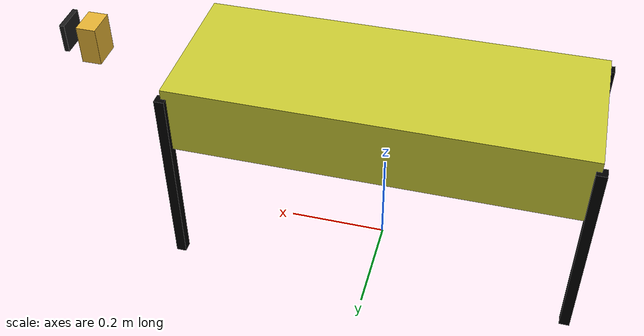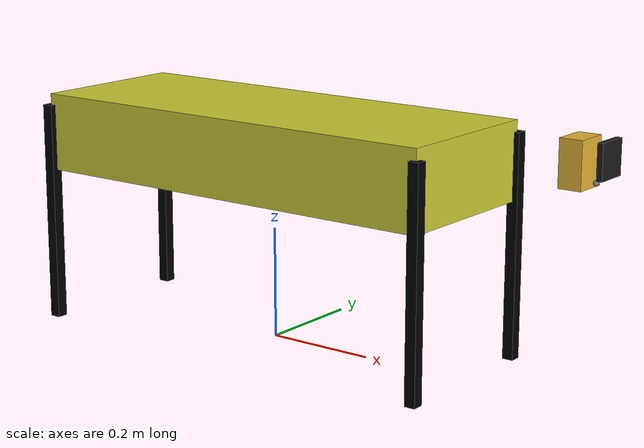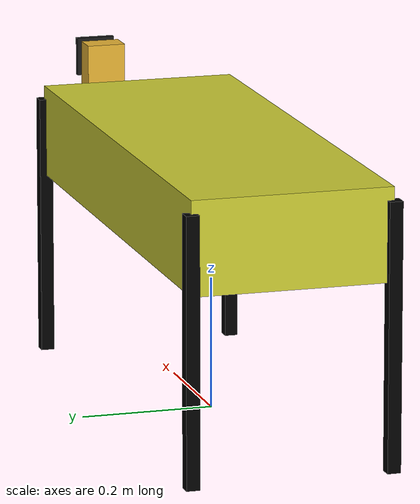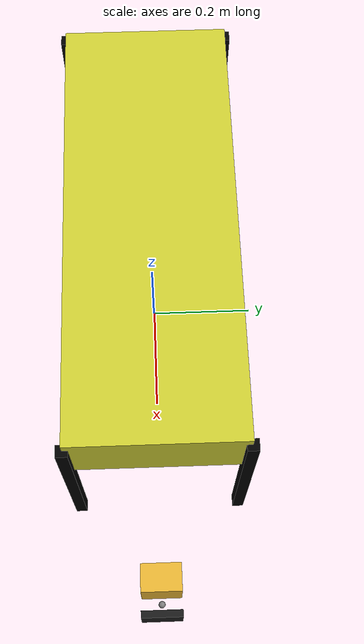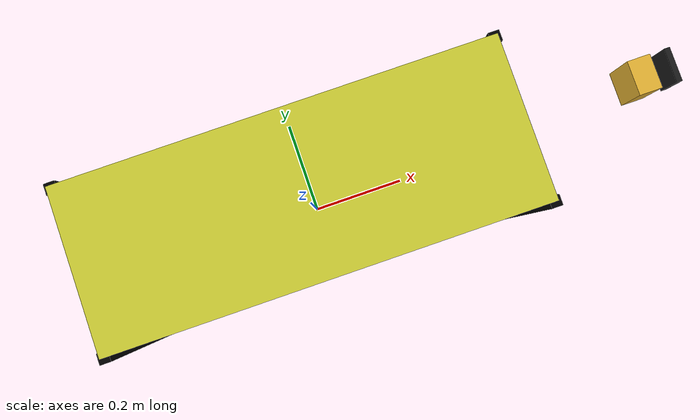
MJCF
<mujoco model="conq">
    <compiler angle="radian" meshdir="meshes/" inertiafromgeom="true"/>
    <option viscosity="1.0" timestep="0.004"/>
    <worldbody>
        <body name="conq_base">
            <body name="conq_body">
                <geom name="conq_base" type="box" pos="0 0 0.35" size="0.4 0.15 0.07" rgba="0.8 0.8 0.2 1"/>
                <geom name="front_left_leg" type="box" pos="0.4 0.15 0.2" size="0.01 0.01 0.2" rgba="0 0 0 1"/>
                <geom name="front_right_leg" type="box" pos="0.4 -0.15 0.2" size="0.01 0.01 0.2" rgba="0 0 0 1"/>
                <geom name="back_left_leg" type="box" pos="-0.4 0.15 0.2" size="0.01 0.01 0.2" rgba="0 0 0 1"/>
                <geom name="back_right_leg" type="box" pos="-0.4 -0.15 0.2" size="0.01 0.01 0.2" rgba="0 0 0 1"/>
                <inertial pos="0 0 0" quat="1 0 0 0" mass="1"/>
                <joint name="hand_x" type="slide" axis="1 0 0" pos="0 0 0" damping="400"/>
                <joint name="hand_y" type="slide" axis="0 1 0" pos="0 0 0" damping="400"/>
                <body name="hand" pos="0.6 0 0.4" quat="1 0 0 0">
                    <inertial pos="0 0 0" quat="1 0 0 0" mass="3"/>
                    <geom name="hand" type="box" size="0.02 0.03 0.04" rgba="0.9 0.7 0.2 1"/>
                    <site name="hand_tool" pos="0.03 0 -0.03"/>
                    <joint name="hand_z" type="slide" axis="0 0 1" pos="0 0 0" damping="10"/>
                    <body name="finger" pos="0.05 0 0" quat="1 0 0 0">
                        <inertial pos="0 0 0" quat="1 0 0 0" mass="0.2"/>
                        <geom name="finger" type="box" pos="0 0 0.01" size="0.005 0.03 0.03" rgba="0.1 0.1 0.1 1"/>
                        <joint name="finger" type="hinge" axis="0 -1 0" pos="0 0 0.04" damping="1"/>
                    </body>
                </body>
            </body>
        </body>
    </worldbody>
    <actuator>
        <intvelocity name="hand_x_vel" joint="hand_x" ctrllimited="true" ctrlrange="-0.5 0.5" kp="1000" actrange="-2 2" forcelimited="true" forcerange="-1000 1000"/>
        <intvelocity name="hand_y_vel" joint="hand_y" ctrllimited="true" ctrlrange="-0.5 0.5" actrange="-2 2" kp="1000" forcelimited="true" forcerange="-1000 1000"/>
        <intvelocity name="hand_z_vel" joint="hand_z" ctrllimited="true" ctrlrange="-0.5 0.5" actrange="-0.35 0.5" kp="200" forcelimited="true" forcerange="-50 50"/>
        <intvelocity name="finger_vel" joint="finger" ctrllimited="true" ctrlrange="-1.5707 1.5707" actrange="0.0 1.5707" kp="10" forcelimited="true" forcerange="-1 1"/>
    </actuator>
</mujoco>
